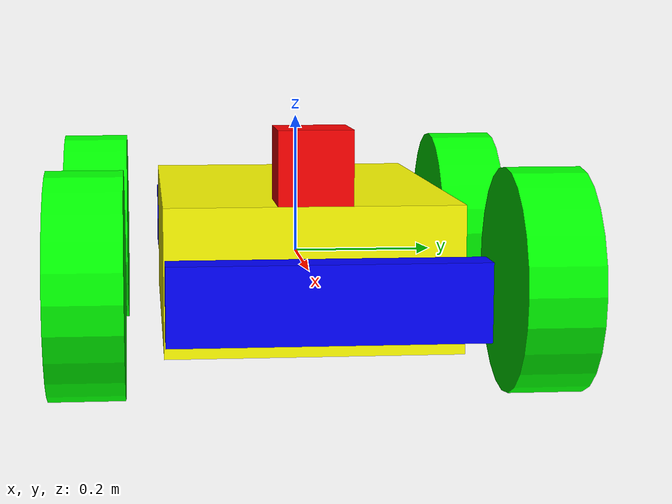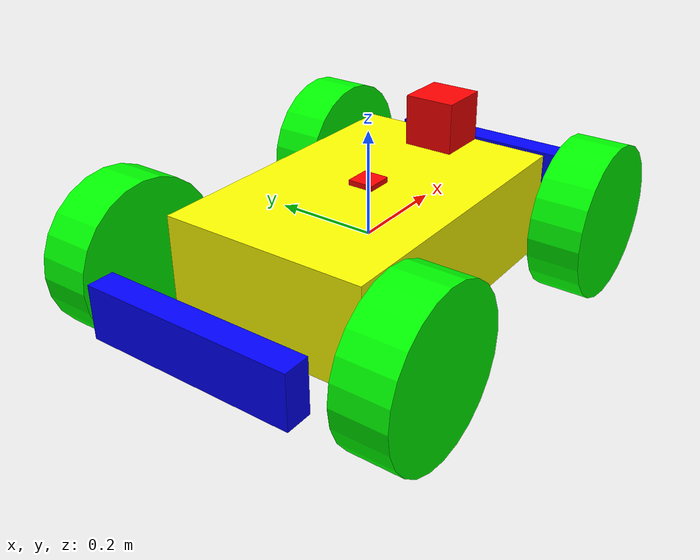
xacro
<?xml version="1.0"?>
<!-- rover -->
<robot name="rover" xmlns:xacro="http://www.ros.org/wiki/xacro">

  <!-- constants for robot dimensions -->
  <xacro:property name="PI" value="3.1415926535897931"/>

  <!-- define colors -->
  <material name="black">
    <color rgba="0.0 0.0 0.0 1.0"/>
  </material>

  <material name="red">
    <color rgba="${255/255} ${0/255} ${0/255} 1.0"/>
  </material>

  <material name="green">
    <color rgba="${0/255} ${255/255} ${0/255} 1.0"/>
  </material>

  <material name="blue">
    <color rgba="${0/255} ${0/255} ${255/255} 1.0"/>
  </material>

  <material name="yellow">
    <color rgba="${255/255} ${255/255} ${0/255} 1.0"/>
  </material>

  <material name="orange">
    <color rgba="${255/255} ${215/255} ${0/255} 1.0"/>
  </material>

  <!-- base dimensions -->
  <xacro:property name="base_x_size" value="0.6" />
  <xacro:property name="base_y_size" value="0.4" />
  <xacro:property name="base_z_size" value="0.2" />

  <!-- wheel properties -->
  <xacro:property name="wheel_length" value="0.1" />
  <xacro:property name="wheel_radius" value="0.15" />

  <!-- base link -->
  <link name="base_link">
    <visual>
      <geometry>
        <box size="${base_x_size} ${base_y_size} ${base_z_size}"/>
      </geometry>
      <material name="yellow"/>
    </visual>
    <collision>
      <geometry>
        <box size="${base_x_size} ${base_y_size} ${base_z_size}"/>
      </geometry>
    </collision>

    <!-- front bumper -->
    <visual>
      <origin xyz="${(base_x_size/2 + wheel_radius)} 0 0" rpy="0 0 0" />
      <geometry>
        <box size="0.05 ${base_y_size} ${base_z_size/2}"/>
      </geometry>
      <material name="blue"/>
    </visual>
    <collision>
      <origin xyz="${(base_x_size/2 + wheel_radius)} 0 0" rpy="0 0 0" />
      <geometry>
        <box size="0.05 ${base_y_size} ${base_z_size/2}"/>
      </geometry>
    </collision>

    <!-- rear bumper -->
    <visual>
      <origin xyz="${-1 * (base_x_size/2 + wheel_radius)} 0 0" rpy="0 0 0" />
      <geometry>
        <box size="0.05 ${base_y_size} ${base_z_size/2}"/>
      </geometry>
      <material name="blue"/>
    </visual>
    <collision>
      <origin xyz="${-1 * (base_x_size/2 + wheel_radius)} 0 0" rpy="0 0 0" />
      <geometry>
        <box size="0.05 ${base_y_size} ${base_z_size/2}"/>
      </geometry>
    </collision>

    <inertial>
      <origin xyz="0 0 0" rpy="0 0 0"/>
      <mass value="1.0"/>
      <inertia
        ixx="0.133" ixy="0.0" ixz="0.0"
        iyy="0.133" iyz="0.0"
        izz="0.133"/>
    </inertial>
  </link>

  <!-- wheels -->
  <link name="front_left_wheel_link">
    <visual>
      <origin xyz="0 0 0" rpy="${PI/2} 0 0" />
      <geometry>
        <cylinder length="${wheel_length}" radius="${wheel_radius}" />
      </geometry>
      <material name="green"/>
    </visual>
    <collision>
      <origin xyz="0 0 0" rpy="${PI/2} 0 0" />
      <geometry>
        <cylinder length="${wheel_length}" radius="${wheel_radius}" />
      </geometry>
    </collision>
    <inertial>
      <origin xyz="0 0 0" rpy="0 0 0"/>
      <mass value="0.1"/>
      <inertia
        ixx="0.0133" ixy="0.0" ixz="0.0"
        iyy="0.0133" iyz="0.0"
        izz="0.0133"/>
    </inertial>
  </link>

  <joint name="front_left_wheel_joint" type="continuous">
    <parent link="base_link"/>
    <child link="front_left_wheel_link"/>
    <origin xyz="${(base_x_size/2)} ${(base_y_size/2 + wheel_length)} 0" rpy="0 0 0"/>
    <axis xyz="0 1 0"/>
    <dynamics damping="0.01"/>
  </joint>

  <link name="front_right_wheel_link">
    <visual>
      <origin xyz="0 0 0" rpy="${PI/2} 0 0" />
      <geometry>
        <cylinder length="${wheel_length}" radius="${wheel_radius}" />
      </geometry>
      <material name="green"/>
    </visual>
    <collision>
      <origin xyz="0 0 0" rpy="${PI/2} 0 0" />
      <geometry>
        <cylinder length="${wheel_length}" radius="${wheel_radius}" />
      </geometry>
    </collision>
    <inertial>
      <origin xyz="0 0 0" rpy="0 0 0"/>
      <mass value="0.1"/>
      <inertia
        ixx="0.0133" ixy="0.0" ixz="0.0"
        iyy="0.0133" iyz="0.0"
        izz="0.0133"/>
    </inertial>
  </link>

  <joint name="front_right_wheel_joint" type="continuous">
    <parent link="base_link"/>
    <child link="front_right_wheel_link"/>
    <origin xyz="${(base_x_size/2)} ${-1*(base_y_size/2 + wheel_length)} 0" rpy="0 0 0"/>
    <axis xyz="0 1 0"/>
    <dynamics damping="0.01"/>
  </joint>

  <link name="rear_left_wheel_link">
    <visual>
      <origin xyz="0 0 0" rpy="${PI/2} 0 0" />
      <geometry>
        <cylinder length="${wheel_length}" radius="${wheel_radius}" />
      </geometry>
      <material name="green"/>
    </visual>
    <collision>
      <origin xyz="0 0 0" rpy="${PI/2} 0 0" />
      <geometry>
        <cylinder length="${wheel_length}" radius="${wheel_radius}" />
      </geometry>
    </collision>
    <inertial>
      <origin xyz="0 0 0" rpy="0 0 0"/>
      <mass value="0.1"/>
      <inertia
        ixx="0.0133" ixy="0.0" ixz="0.0"
        iyy="0.0133" iyz="0.0"
        izz="0.0133"/>
    </inertial>
  </link>

  <joint name="rear_left_wheel_joint" type="continuous">
    <parent link="base_link"/>
    <child link="rear_left_wheel_link"/>
    <origin xyz="${-1*(base_x_size/2)} ${(base_y_size/2 + wheel_length)} 0" rpy="0 0 0"/>
    <axis xyz="0 1 0"/>
    <dynamics damping="0.01"/>
  </joint>

  <link name="rear_right_wheel_link">
    <visual>
      <origin xyz="0 0 0" rpy="${PI/2} 0 0" />
      <geometry>
        <cylinder length="${wheel_length}" radius="${wheel_radius}" />
      </geometry>
      <material name="green"/>
    </visual>
    <collision>
      <origin xyz="0 0 0" rpy="${PI/2} 0 0" />
      <geometry>
        <cylinder length="${wheel_length}" radius="${wheel_radius}" />
      </geometry>
    </collision>
    <inertial>
      <origin xyz="0 0 0" rpy="0 0 0"/>
      <mass value="0.1"/>
      <inertia
        ixx="0.0133" ixy="0.0" ixz="0.0"
        iyy="0.0133" iyz="0.0"
        izz="0.0133"/>
    </inertial>
  </link>

  <joint name="rear_right_wheel_joint" type="continuous">
    <parent link="base_link"/>
    <child link="rear_right_wheel_link"/>
    <origin xyz="${-1*(base_x_size/2)} ${-1*(base_y_size/2 + wheel_length)} 0" rpy="0 0 0"/>
    <axis xyz="0 1 0"/>
    <dynamics damping="0.01"/>
  </joint>

  <!-- sensors -->
  <link name="imu_link">
    <visual>
      <origin xyz="0 0 0" rpy="0 0 0" />
      <geometry>
        <box size="0.05 0.05 0.01"/>
      </geometry>
      <material name="red"/>
    </visual>
    <collision>
      <origin xyz="0 0 0" rpy="0 0 0" />
      <geometry>
        <box size="0.05 0.05 0.01"/>
      </geometry>
    </collision>
    <inertial>
      <origin xyz="0 0 0" rpy="0 0 0"/>
      <mass value="0.01"/>
      <inertia
        ixx="0.00133" ixy="0.0" ixz="0.0"
        iyy="0.00133" iyz="0.0"
        izz="0.00133"/>
    </inertial>
  </link>
  <joint name="imu_joint" type="fixed">
    <parent link="base_link"/>
    <child link="imu_link"/>
    <origin xyz="0 0 ${base_z_size/2+0.005}" rpy="0 0 0"/>
    <axis xyz="0 0 1"/>
  </joint>

  <link name="lidar_link">
    <visual>
      <origin xyz="0 0 0" rpy="0 0 0" />
      <geometry>
        <box size="0.1 0.1 0.1"/>
      </geometry>
      <material name="red"/>
    </visual>
    <collision>
      <origin xyz="0 0 0" rpy="0 0 0" />
      <geometry>
        <box size="0.1 0.1 0.1"/>
      </geometry>
    </collision>
    <inertial>
      <origin xyz="0 0 0" rpy="0 0 0"/>
      <mass value="0.1"/>
      <inertia
        ixx="0.0133" ixy="0.0" ixz="0.0"
        iyy="0.0133" iyz="0.0"
        izz="0.0133"/>
    </inertial>
  </link>
  <joint name="lidar_joint" type="fixed">
    <parent link="base_link"/>
    <child link="lidar_link"/>
    <origin xyz="${base_x_size/2-0.05} 0 ${base_z_size/2+0.05}" rpy="0 0 0"/>
    <axis xyz="0 0 1"/>
  </joint>

  <!-- gazebo links -->
  <gazebo reference="base_link">
  </gazebo>

  <gazebo reference="front_left_wheel_link">
  </gazebo>
  <gazebo reference="front_left_wheel_joint">
  </gazebo>
  <gazebo reference="front_right_wheel_link">
  </gazebo>
  <gazebo reference="front_right_wheel_joint">
  </gazebo>
  <gazebo reference="rear_left_wheel_link">
  </gazebo>
  <gazebo reference="rear_left_wheel_joint">
  </gazebo>
  <gazebo reference="rear_right_wheel_link">
  </gazebo>
  <gazebo reference="rear_right_wheel_joint">
  </gazebo>

  <gazebo reference="imu_link">
    <sensor name="imu_sensor" type="imu">
      <pose>0 0 0 ${PI} 0 0</pose>
      <always_on>1</always_on>
      <update_rate>1000.0</update_rate>
    </sensor>
  </gazebo>
  <gazebo reference="imu_joint">
  </gazebo>

  <gazebo reference="lidar_link">
    <!-- 360 deg / multi-laser -->
    <sensor name='gpu_lidar' type='gpu_lidar'>
      <topic>lidar</topic>
      <always_on>1</always_on>
      <visualize>1</visualize>
      <update_rate>10</update_rate>
      <lidar>
        <scan>
          <horizontal>
            <samples>512</samples>
            <resolution>1</resolution>
            <min_angle>${-PI}</min_angle>
            <max_angle>${PI}</max_angle>
          </horizontal>
          <vertical>
            <samples>64</samples>
            <resolution>1</resolution>
            <min_angle>-0.261799</min_angle>
            <max_angle>0.261799</max_angle>
          </vertical>
        </scan>
        <range>
          <min>0.08</min>
          <max>10.0</max>
          <resolution>0.01</resolution>
        </range>
      </lidar>
    </sensor>
  </gazebo>
  <gazebo reference="lidar_joint">
  </gazebo>

  <!-- gazebo plugins -->
  <gazebo>
    <plugin
      filename="gz-sim-pose-publisher-system"
      name="gz::sim::systems::PosePublisher">
      <publish_link_pose>1</publish_link_pose>
      <publish_visual_pose>0</publish_visual_pose>
      <publish_collision_pose>0</publish_collision_pose>
      <publish_sensor_pose>0</publish_sensor_pose>
      <publish_model_pose>1</publish_model_pose>
      <publish_nested_model_pose>0</publish_nested_model_pose>
      <update_frequency>50</update_frequency>
    </plugin>
    <plugin
      filename="gz-sim-odometry-publisher-system"
      name="gz::sim::systems::OdometryPublisher">
      <odom_frame>odom</odom_frame>
      <robot_base_frame>base_link</robot_base_frame>
      <odom_publish_frequency>50</odom_publish_frequency>
      <odom_topic>model/rover/odometry</odom_topic>
      <dimensions>3</dimensions>
    </plugin>

    <plugin
      filename="gz-sim-joint-state-publisher-system"
      name="gz::sim::systems::JointStatePublisher">
    </plugin>

    <plugin
      filename="gz-sim-apply-joint-force-system"
      name="gz::sim::systems::ApplyJointForce">
      <joint_name>front_left_wheel_joint</joint_name>
    </plugin>
    <plugin
      filename="gz-sim-apply-joint-force-system"
      name="gz::sim::systems::ApplyJointForce">
      <joint_name>front_right_wheel_joint</joint_name>
    </plugin>
    <plugin
      filename="gz-sim-apply-joint-force-system"
      name="gz::sim::systems::ApplyJointForce">
      <joint_name>rear_left_wheel_joint</joint_name>
    </plugin>
    <plugin
      filename="gz-sim-apply-joint-force-system"
      name="gz::sim::systems::ApplyJointForce">
      <joint_name>rear_right_wheel_joint</joint_name>
    </plugin>

    <plugin name="ArduPilotPlugin" filename="ArduPilotPlugin">
      <fdm_addr>127.0.0.1</fdm_addr>
      <fdm_port_in>9002</fdm_port_in>
      <connectionTimeoutMaxCount>5</connectionTimeoutMaxCount>
      <lock_step>1</lock_step>
      <modelXYZToAirplaneXForwardZDown>0 0 0 ${PI} 0 0</modelXYZToAirplaneXForwardZDown>
      <gazeboXYZToNED>0 0 0 ${PI} 0 ${PI/2}</gazeboXYZToNED>
      <imuName>imu_sensor</imuName>

      <!--
          SERVO1_FUNCTION   73 (Throttle Left)
          SERVO1_MAX        2000
          SERVO1_MIN        1000
          SERVO1_REVERSED   0
          SERVO1_TRIM       1500
       -->
      <control channel="0">
        <jointName>front_left_wheel_joint</jointName>
        <useForce>1</useForce>
        <multiplier>46.3</multiplier>
        <offset>-0.5</offset>
        <servo_min>1000</servo_min>
        <servo_max>2000</servo_max>
        <type>VELOCITY</type>
        <p_gain>0.2</p_gain>
        <i_gain>0.06</i_gain>
        <d_gain>0.0001</d_gain>
        <i_max>1</i_max>
        <i_min>-1</i_min>
        <cmd_max>-1.0</cmd_max>
        <cmd_min>0.0</cmd_min>
      </control>
      <control channel="0">
        <jointName>rear_left_wheel_joint</jointName>
        <useForce>1</useForce>
        <multiplier>46.3</multiplier>
        <offset>-0.5</offset>
        <servo_min>1000</servo_min>
        <servo_max>2000</servo_max>
        <type>VELOCITY</type>
        <p_gain>0.2</p_gain>
        <i_gain>0.06</i_gain>
        <d_gain>0.0001</d_gain>
        <i_max>1</i_max>
        <i_min>-1</i_min>
        <cmd_max>-1.0</cmd_max>
        <cmd_min>0.0</cmd_min>
      </control>

      <!--
          SERVO3_FUNCTION   74 (Throttle Right)
          SERVO3_MAX        2000
          SERVO3_MIN        1000
          SERVO3_REVERSED   0
          SERVO3_TRIM       1500
       -->
      <control channel="2">
        <jointName>front_right_wheel_joint</jointName>
        <useForce>1</useForce>
        <multiplier>46.3</multiplier>
        <offset>-0.5</offset>
        <servo_min>1000</servo_min>
        <servo_max>2000</servo_max>
        <type>VELOCITY</type>
        <p_gain>0.2</p_gain>
        <i_gain>0.06</i_gain>
        <d_gain>0.0001</d_gain>
        <i_max>1</i_max>
        <i_min>-1</i_min>
        <cmd_max>-1.0</cmd_max>
        <cmd_min>0.0</cmd_min>
      </control>
      <control channel="2">
        <jointName>rear_right_wheel_joint</jointName>
        <useForce>1</useForce>
        <multiplier>46.3</multiplier>
        <offset>-0.5</offset>
        <servo_min>1000</servo_min>
        <servo_max>2000</servo_max>
        <type>VELOCITY</type>
        <p_gain>0.2</p_gain>
        <i_gain>0.06</i_gain>
        <d_gain>0.0001</d_gain>
        <i_max>1</i_max>
        <i_min>-1</i_min>
        <cmd_max>-1.0</cmd_max>
        <cmd_min>0.0</cmd_min>
      </control>
    </plugin>

  </gazebo>

</robot>
